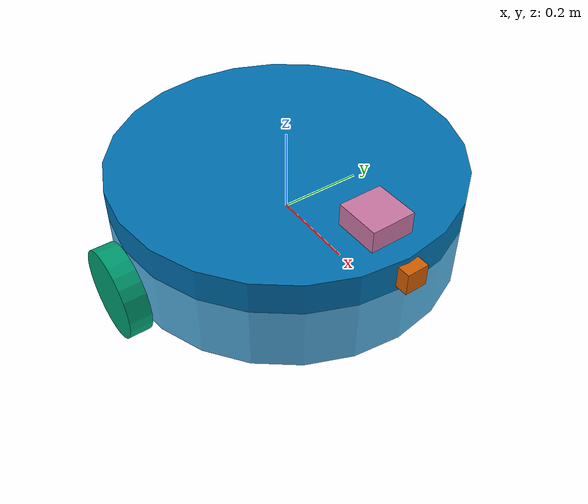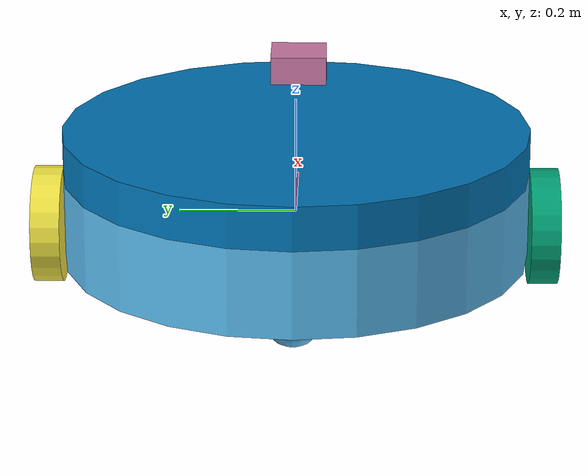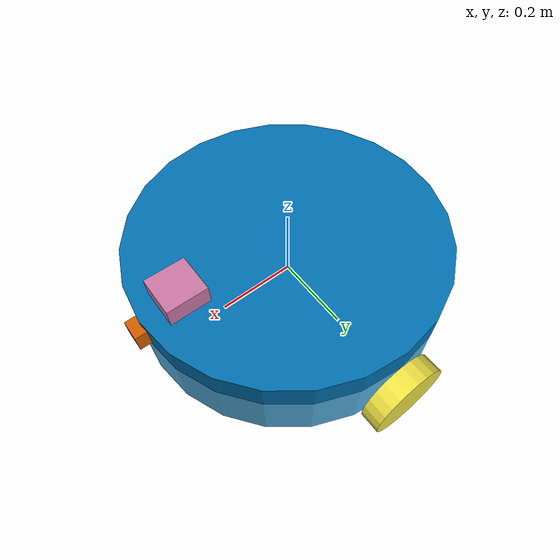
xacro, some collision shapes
<?xml version="1.0"?>

<robot name="my_robot" xmlns:xacro="http://www.ros.org/wiki/xacro">

    <!-- CONSTANTS -->

    <xacro:property name="pi" value="3.1415926535897931" />

    <xacro:property name="reduction_factor_caster_radius" value="0.998" />

    <!-- PARAMETERS -->

    <!-- Base parameters -->
    <xacro:property name="base_radius" value="0.4" />
    <!-- base height must be inside (wheel_radius, 2*wheel_radius) -->
    <!-- note that the extremes of the interval are not included   -->
    <xacro:property name="base_height" value="0.15" />
    <xacro:property name="base_mass" value="15.0" />

    <!-- Wheel parameters -->
    <xacro:property name="wheel_radius" value="0.1" />
    <xacro:property name="wheel_length" value="0.05" />
    <xacro:property name="wheel_mass" value="5.0" />

    <xacro:property name="z_offset_between_centers" value="${wheel_radius - base_height/2}" />

    <!-- Camera parameters -->
    <xacro:property name="camera_edge_length" value="0.05" />
    <xacro:property name="camera_mass" value="0.1" />

    <!-- Lidar parameters -->
    <xacro:property name="lidar_edge_length" value="0.1" />
    <xacro:property name="lidar_mass" value="1e-5" />

    <!-- Sensor's base parameters -->
    <xacro:property name="sensors_base_heigth" value="${1.5*camera_edge_length}" />
    <xacro:property name="sensors_base_mass" value="5.0" />
    <xacro:property name="sensors_base_offset_z" value="${base_height/2 + sensors_base_heigth/2}" />

    <!-- INCLUDES -->

    <xacro:include filename="$(find my_robot)/urdf/materials.xacro" />
    <xacro:include filename="$(find my_robot)/urdf/macros.xacro" />
    <xacro:include filename="$(find my_robot)/urdf/my_robot.gazebo" />

    <!-- ROBOT DESCRIPTION-->

    <link name="robot_footprint"></link>

    <joint name="robot_footprint_joint" type="fixed">
        <origin xyz="0 0 0" rpy="0 0 0"/>
        <parent link="robot_footprint"/>
        <child link="base"/>
    </joint>

    <!-- Cylindrical base with two casters for stability along the y axis-->
    <link name="base">
        <!-- we want the wheel to touch the ground and the top of the base
             to coincide with the top of the wheel                       -->
        <pose>0 0 ${wheel_radius + z_offset_between_centers} 0 0 0</pose>

        <xacro:cylinder_inertial
            mass="${base_mass}" radius="${base_radius}" length="${base_height}"
        />

        <collision name="base_collision">
            <origin xyz="0 0 0" rpy="0 0 0"/>
            <geometry>
                <cylinder radius="${base_radius}" length="${base_height}" />
            </geometry>
        </collision>

        <visual name="base_visual">
            <origin xyz="0 0 0" rpy="0 0 0"/>
            <geometry>
                <cylinder radius="${base_radius}" length="${base_height}" />
            </geometry>
        </visual>

        <collision name="back_caster_collision">
            <origin
                xyz="${-3/4*base_radius} 0 ${-wheel_radius/2 - z_offset_between_centers}"
                rpy="0 0 0"
            />
            <geometry>
                <sphere radius="${reduction_factor_caster_radius*wheel_radius/2}"/>
            </geometry>
        </collision>

        <visual name="back_caster_visual">
            <origin
                xyz="${-3/4*base_radius} 0 ${-wheel_radius/2 - z_offset_between_centers}"
                rpy="0 0 0"
            />
            <geometry>
                <sphere radius="${wheel_radius/2}"/>
            </geometry>
        </visual>

        <collision name="front_caster_collision">
            <origin
                xyz="${3/4*base_radius} 0 ${-wheel_radius/2 - z_offset_between_centers}"
                rpy="0 0 0"
            />
            <geometry>
                <sphere radius="${reduction_factor_caster_radius*wheel_radius/2}"/>
            </geometry>
        </collision>

        <visual name="front_caster_visual">
            <origin
                xyz="${3/4*base_radius} 0 ${-wheel_radius/2 - z_offset_between_centers}"
                rpy="0 0 0"
            />
            <geometry>
                <sphere radius="${wheel_radius/2}"/>
            </geometry>
        </visual>

    </link>

    <!-- Wheels on the x axis with their corresponding joints -->
    <xacro:wheel side="left" reflect="-1" />
    <xacro:wheel side="right" reflect="1" />

    <!-- Rotating base for the sensors -->
    <link name="sensors_base">
        <xacro:cylinder_inertial
            mass="${sensors_base_mass}" radius="${base_radius}" length="${sensors_base_heigth}"
        />

        <collision name="sensors_base_collision">
            <origin xyz="0 0 0" rpy="0 0 0"/>
            <geometry>
                <cylinder radius="${base_radius}" length="${sensors_base_heigth}" />
            </geometry>
        </collision>

        <visual name="sensors_base_visual">
            <origin xyz="0 0 0" rpy="0 0 0"/>
            <geometry>
                <cylinder radius="${base_radius}" length="${sensors_base_heigth}" />
            </geometry>
        </visual>
    </link>

    <joint name="sensors_base_hinge" type="continuous">
        <origin xyz="0 0 ${sensors_base_offset_z}" rpy="0 0 0" />
        <child link="sensors_base" />
        <parent link="base" />
        <axis xyz="0 0 1" rpy="0 0 0" />
        <limit effort="10000" velocity="1000" />
        <dynamics damping="1.0" friction="1.0" />
    </joint>

    <!-- Camera -->
    <link name="camera">
        <xacro:cube_inertial mass="${camera_mass}" edge_length="${camera_edge_length}" />

        <collision name="camera_collision">
            <origin xyz="0 0 0" rpy="0 0 0" />
            <geometry>
                <box size="${camera_edge_length} ${camera_edge_length} ${camera_edge_length}" />
            </geometry>
        </collision>

        <visual name="camera_visual">
            <origin xyz="0 0 0" rpy="0 0 0" />
            <geometry>
                <box size="${camera_edge_length} ${camera_edge_length} ${camera_edge_length}" />
            </geometry>
        </visual>
    </link>

    <joint name="camera_joint" type="fixed">
        <origin xyz="${base_radius} 0 0" rpy="0 0 0" />
        <parent link="sensors_base" />
        <child link="camera" />
        <axis xyz="0 1 0" rpy="0 0 0" />
    </joint>

    <!-- Lidar -->
    <link name="hokuyo">
        <xacro:cube_inertial mass="${lidar_mass}" edge_length="${lidar_edge_length}" />

        <collision name="lidar_collision">
            <origin xyz="0 0 0" rpy="0 0 0" />
            <geometry>
                <box size="${lidar_edge_length} ${lidar_edge_length} ${lidar_edge_length}" />
            </geometry>
        </collision>

        <visual name="lidar_visual">
            <origin xyz="0 0 0" rpy="0 0 0" />
            <geometry>
                <mesh filename="package://my_robot/meshes/hokuyo.dae" />
            </geometry>
        </visual>
    </link>

    <joint name="hokuyo_joint" type="fixed">
        <origin
            xyz="${base_radius - lidar_edge_length} 0 ${sensors_base_heigth/2}"
            rpy="0 0 0"
        />
        <parent link="sensors_base" />
        <child link="hokuyo" />
        <axis xyz="0 1 0" rpy="0 0 0" />
    </joint>

</robot>

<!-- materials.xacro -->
<robot xmlns:xacro="http://www.ros.org/wiki/xacro">

    <!-- First palette -->
    <!-- https://coolors.co/fe938c-e6b89c-ead2ac-9cafb7-4281a4 -->
    <material name="tulip">
        <color rgba="${254/255} ${147/255} ${140/255} 1" />
    </material>

    <material name="pale_gold">
        <color rgba="${230/255} ${184/255} ${156/255} 1" />
    </material>

    <material name="desert_sand">
        <color rgba="${234/255} ${210/255} ${172/255} 1" />
    </material>

    <material name="pewter_blue">
        <color rgba="${156/255} ${175/255} ${183/255} 1" />
    </material>

    <material name="steel_blue">
        <color rgba="${66/255} ${129/255} ${164/255} 1" />
    </material>

    <!-- Second palette -->
    <!-- https://coolors.co/5bc0eb-fde74c-9bc53d-e55934-fa7921 -->
    <xacro:macro name="material_blue_jeans">
        <visual>
            <material>
                <ambient>${91/255} ${192/255} ${235/255} 1</ambient>
                <diffuse>${91/255} ${192/255} ${235/255} 1</diffuse>
                <specular>0.1 0.1 0.1 0.1 1</specular>
            </material>
        </visual>
    </xacro:macro>

    <xacro:macro name="material_gargoyle_gas">
        <visual>
            <material>
                <ambient>${253/255} ${231/255} ${76/255} 1</ambient>
                <diffuse>${253/255} ${231/255} ${76/255} 1</diffuse>
                <specular>0.1 0.1 0.1 0.1 1</specular>
            </material>
        </visual>
    </xacro:macro>

        <xacro:macro name="material_android_green">
        <visual>
            <material>
                <ambient>${155/255} ${197/255} ${61/255} 1</ambient>
                <diffuse>${155/255} ${197/255} ${61/255} 1</diffuse>
                <specular>0.1 0.1 0.1 0.1 1</specular>
            </material>
        </visual>
    </xacro:macro>

        <xacro:macro name="material_flame">
        <visual>
            <material>
                <ambient>${229/255} ${89/255} ${52/255} 1</ambient>
                <diffuse>${229/255} ${89/255} ${52/255} 1</diffuse>
                <specular>0.1 0.1 0.1 0.1 1</specular>
            </material>
        </visual>
    </xacro:macro>

    <xacro:macro name="material_princeton_orange">
        <visual>
            <material>
                <ambient>${250/255} ${121/255} ${33/255} 1</ambient>
                <diffuse>${250/255} ${121/255} ${33/255} 1</diffuse>
                <specular>0.1 0.1 0.1 0.1 1</specular>
            </material>
        </visual>
    </xacro:macro>

</robot>

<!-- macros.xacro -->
<robot xmlns:xacro="http://www.ros.org/wiki/xacro">

    <!-- Inertial of a cylinder -->
    <xacro:macro name="cylinder_inertial" params="mass radius length">
        <inertial>
            <mass value="${mass}" />
            <inertia
                ixx="${1/12*mass*(3*radius*radius + length*length)}" ixy="0" ixz="0"
                iyy="${1/12*mass*(3*radius*radius + length*length)}" iyz="0"
                izz="${1/2*mass*radius*radius}"
            />
        </inertial>
    </xacro:macro>

    <!-- Inertial of a cube -->
    <xacro:macro name="cube_inertial" params="mass edge_length">
        <inertial>
            <mass value="${mass}" />
            <inertia
                ixx="${1/6*mass*edge_length*edge_length}" ixy="0" ixz="0"
                iyy="${1/6*mass*edge_length*edge_length}" iyz="0"
                izz="${1/6*mass*edge_length*edge_length}"
            />
        </inertial>
    </xacro:macro>

    <!-- Add a wheel and its joint on the x axis, outer part of the base -->
    <xacro:macro name="wheel" params="side reflect">
        <link name="${side}_wheel">
            <xacro:cylinder_inertial
                mass="${wheel_mass}" radius="${wheel_radius}" length="${wheel_length}"
            />

            <collision name="${side}_wheel_collision">
                <origin xyz="0 0 0" rpy="0 ${pi/2} ${pi/2}"/>
                <geometry>
                    <cylinder radius="${wheel_radius}" length="${wheel_length}"/>
                </geometry>
            </collision>

            <visual name="${side}_wheel_visual">
                <origin xyz="0 0 0" rpy="0 ${pi/2} ${pi/2}"/>
                <geometry>
                    <cylinder radius="${wheel_radius}" length="${wheel_length}"/>
                </geometry>
            </visual>
        </link>

        <joint type="continuous" name="${side}_wheel_hinge">
            <origin
                xyz="0 ${reflect*(base_radius + wheel_length/2)} ${-z_offset_between_centers}"
                rpy="0 0 0"
            />
            <child link="${side}_wheel"/>
            <parent link="base"/>
            <axis xyz="0 1 0" rpy="0 0 0"/>
            <limit effort="10000" velocity="1000"/>
            <dynamics damping="1.0" friction="1.0"/>
        </joint>
    </xacro:macro>
</robot>
